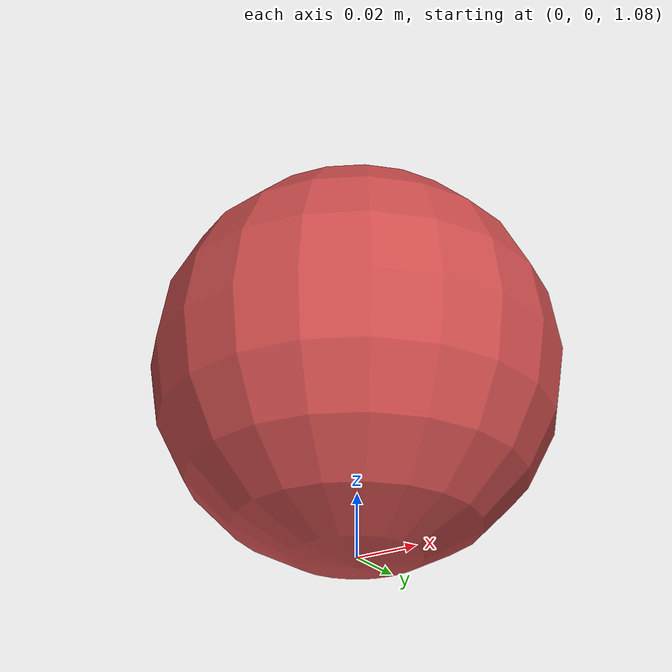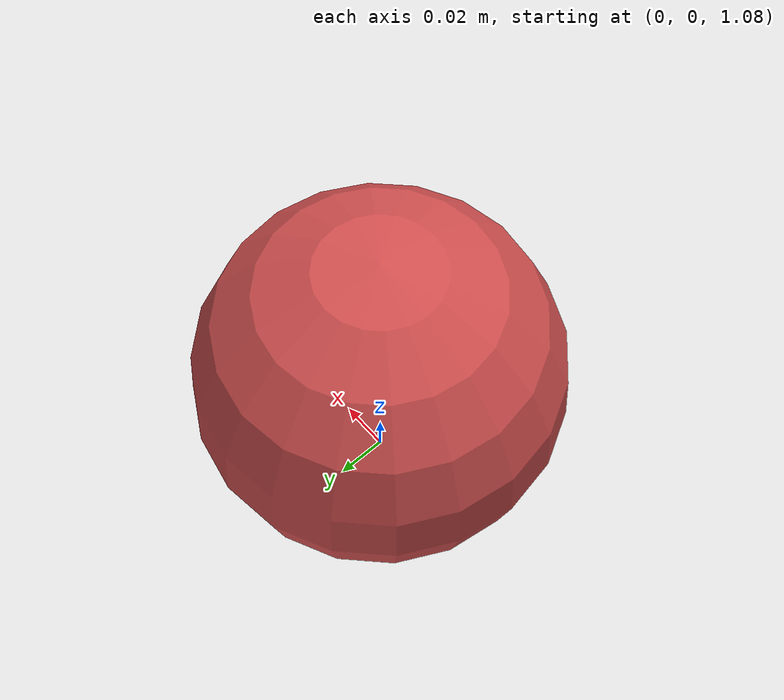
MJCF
<mujoco model="drop_000">
  <option timestep="0.001" gravity="0 0 -9.81"/>

  <visual>
    <headlight ambient="0.5 0.5 0.5"/>
  </visual>

  <asset>
    <texture name="grid" type="2d" builtin="checker" width="512" height="512" rgb1="0.2 0.3 0.4" rgb2="0.3 0.4 0.5"/>
    <material name="grid" texture="grid" texrepeat="1 1" reflectance="0.2"/>
    <material name="finger" rgba="0.8 0.3 0.3 1.0"/>
  </asset>

  <worldbody>
    <!-- Ground plane -->
    <geom name="floor" type="plane" size="2 2 0.1" material="grid"
          condim="6" friction="0.8738498355735966 0.005 0.0001" solref="0.02 0.9250747218932297"/>

    <!-- Sphere -->
    <body name="fingertip" pos="0 0 1.1411748925561216">
      <freejoint/>
      <geom name="finger" type="sphere" size="0.06471324279627141" mass="0.06001101191970172" material="finger"
            condim="6" friction="0.8738498355735966 0.005 0.0001" solref="0.02 0.9250747218932297"/>
      <site name="contact_site" pos="0 0 0" size="0.001"/>
    </body>
  </worldbody>

  <sensor>
    <touch name="finger_touch" site="contact_site"/>
    <framepos name="finger_pos" objtype="site" objname="contact_site"/>
    <framequat name="finger_quat" objtype="site" objname="contact_site"/>
    <framelinvel name="finger_vel" objtype="site" objname="contact_site"/>
  </sensor>
</mujoco>
